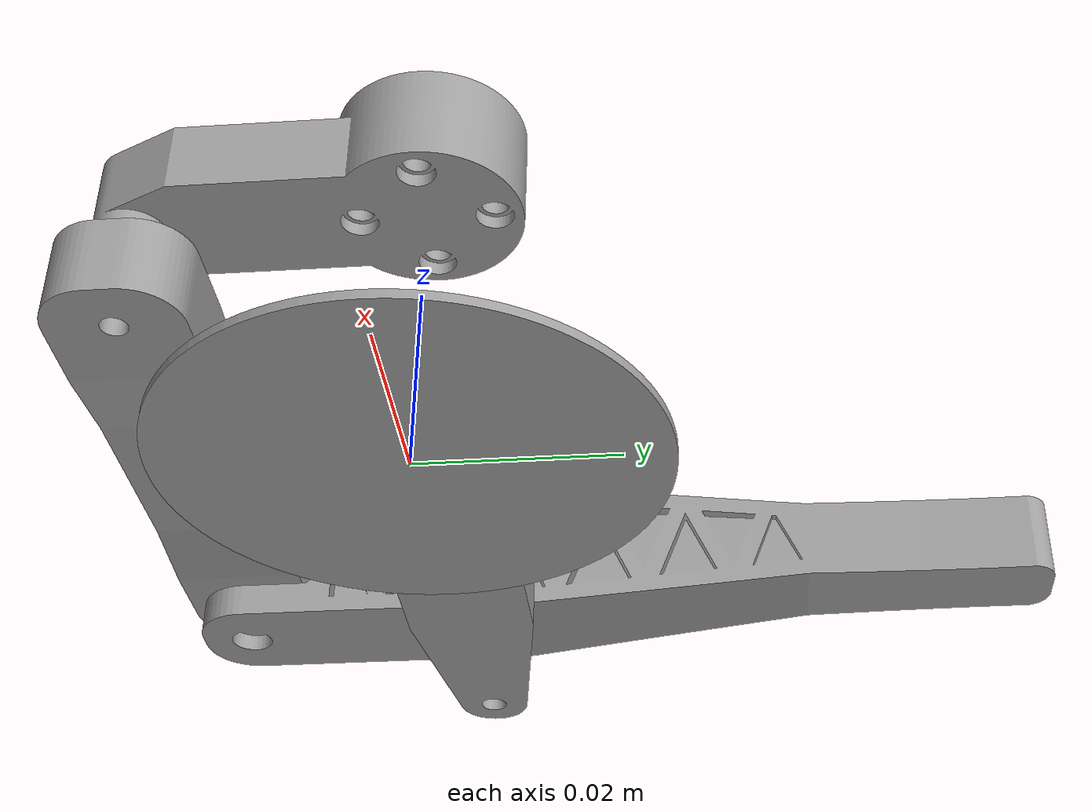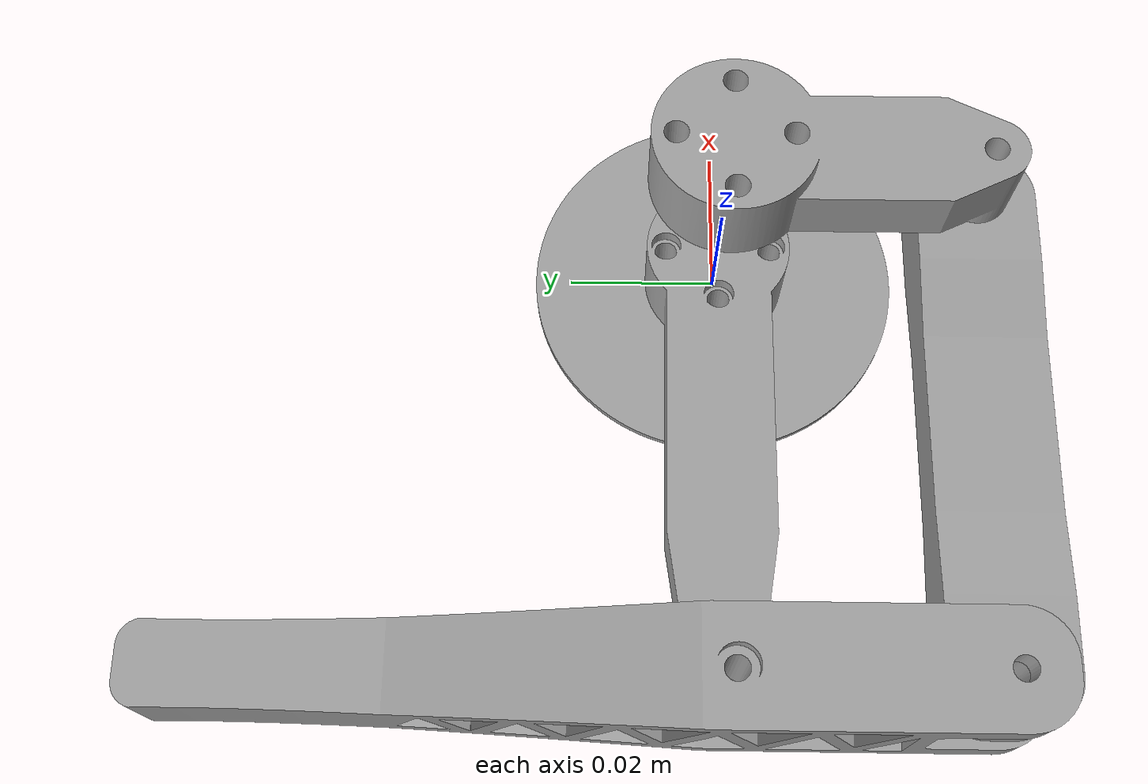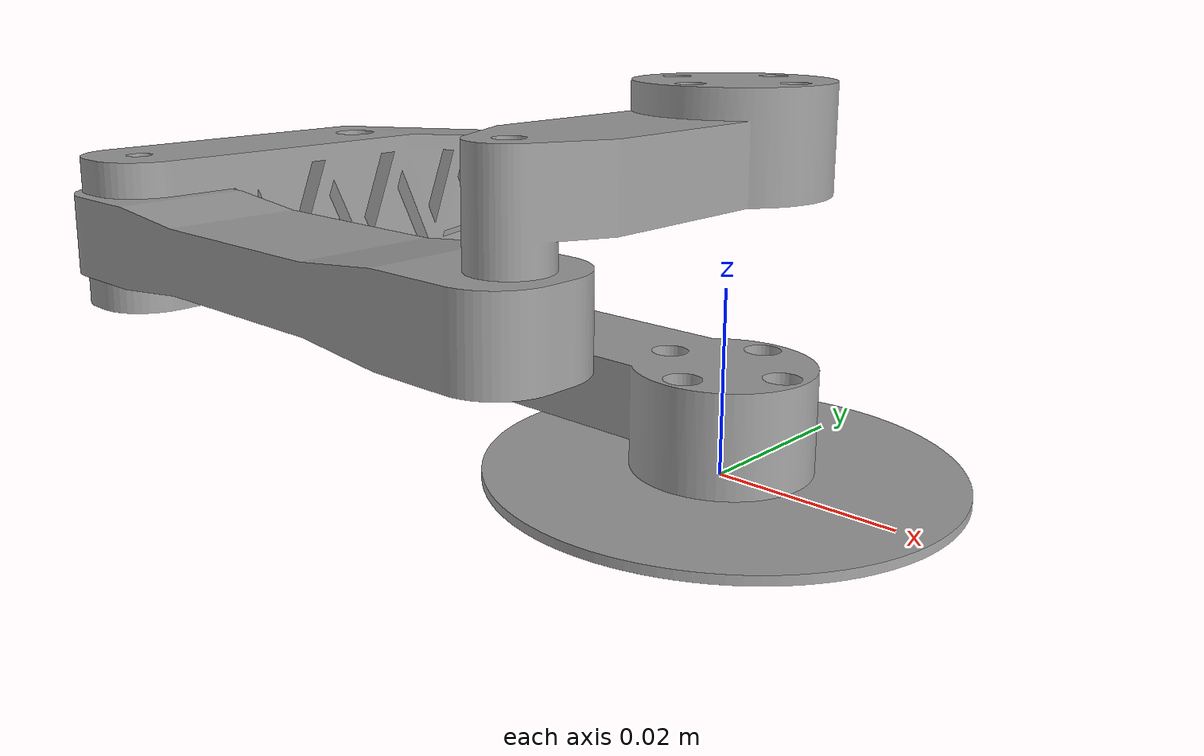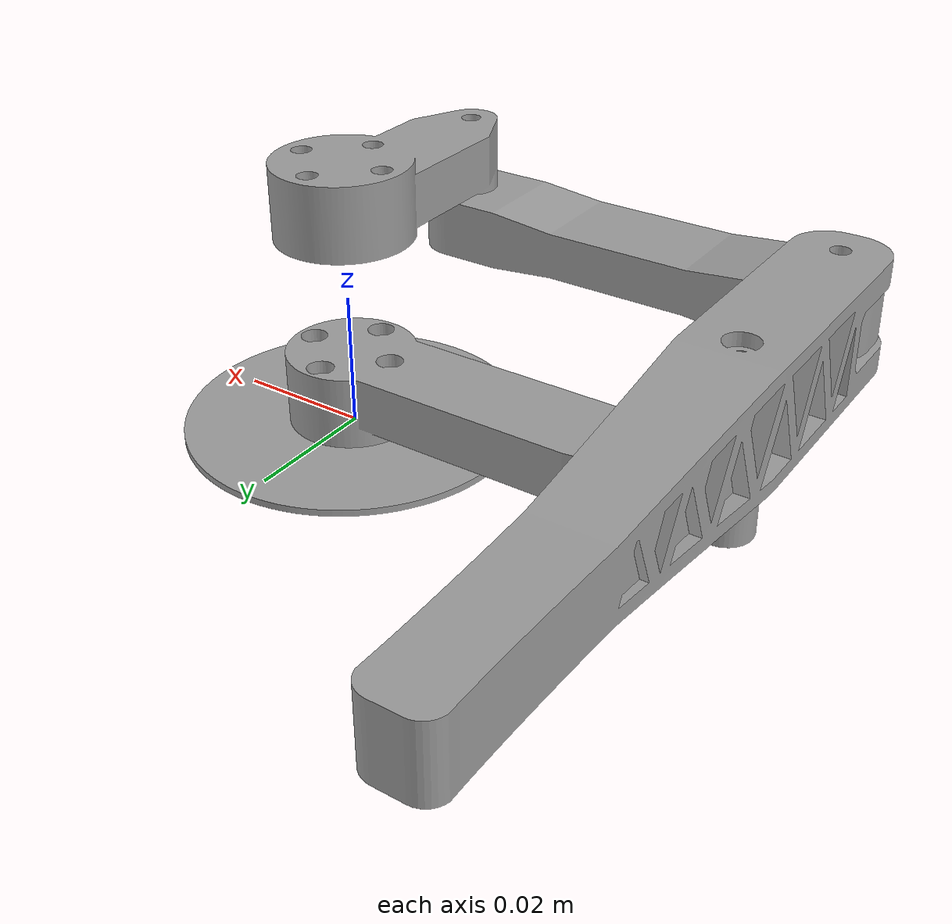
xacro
<?xml version="1.0" ?>
<robot name="leg_assembly_2" xmlns:xacro="http://www.ros.org/wiki/xacro">

<xacro:include filename="$(find four_bar_tests)/urdf/materials.xacro" />
<xacro:include filename="$(find four_bar_tests)/urdf/leg_assembly_2.trans" />
<link name="base_link">
  <inertial>
    <origin xyz="4.523455546970336e-18 -4.634477849432853e-18 0.0005000000000000002" rpy="0 0 0"/>
    <mass value="0.015413438956674918"/>
    <inertia ixx="2e-06" iyy="2e-06" izz="5e-06" ixy="-0.0" iyz="-0.0" ixz="0.0"/>
  </inertial>
  <visual>
    <origin xyz="0 0 0" rpy="0 0 0"/>
    <geometry>
      <mesh filename="package://four_bar_tests/meshes/base_link.stl" scale="0.001 0.001 0.001"/>
    </geometry>
    <material name="steel_satin"/>
  </visual>
  <collision>
    <origin xyz="0 0 0" rpy="0 0 0"/>
    <geometry>
      <mesh filename="package://four_bar_tests/meshes/base_link.stl" scale="0.001 0.001 0.001"/>
    </geometry>
  </collision>
</link>

<link name="Outer_Mid_Leg_v5_1">
  <inertial>
    <origin xyz="-0.02234829331760629 -3.06642734856997e-09 0.006518957773930485" rpy="0 0 0"/>
    <mass value="0.06544926542663207"/>
    <inertia ixx="2e-06" iyy="2.8e-05" izz="2.8e-05" ixy="0.0" iyz="-0.0" ixz="1e-06"/>
  </inertial>
  <visual>
    <origin xyz="-0.0 0.0 -0.001" rpy="0 0 0"/>
    <geometry>
      <mesh filename="package://four_bar_tests/meshes/Outer_Mid_Leg_v5_1.stl" scale="0.001 0.001 0.001"/>
    </geometry>
    <material name="steel_satin"/>
  </visual>
  <collision>
    <origin xyz="-0.0 0.0 -0.001" rpy="0 0 0"/>
    <geometry>
      <mesh filename="package://four_bar_tests/meshes/Outer_Mid_Leg_v5_1.stl" scale="0.001 0.001 0.001"/>
    </geometry>
  </collision>
</link>

<link name="Lower_Leg_v18_1">
  <inertial>
    <origin xyz="-1.0592182686508522e-10 0.011607214191396622 0.008502681783893731" rpy="0 0 0"/>
    <mass value="0.11490639183279938"/>
    <inertia ixx="9.1e-05" iyy="4e-06" izz="9e-05" ixy="-0.0" iyz="0.0" ixz="-0.0"/>
  </inertial>
  <visual>
    <origin xyz="0.06 -0.0 -0.014" rpy="0 0 0"/>
    <geometry>
      <mesh filename="package://four_bar_tests/meshes/Lower_Leg_v18_1.stl" scale="0.001 0.001 0.001"/>
    </geometry>
    <material name="steel_satin"/>
  </visual>
  <collision>
    <origin xyz="0.06 -0.0 -0.014" rpy="0 0 0"/>
    <geometry>
      <mesh filename="package://four_bar_tests/meshes/Lower_Leg_v18_1.stl" scale="0.001 0.001 0.001"/>
    </geometry>
  </collision>
</link>

<link name="Inner_Mid_Leg_v8_1">
  <inertial>
    <origin xyz="0.029909480487406923 -1.1378867292854977e-10 -0.004510560598069528" rpy="0 0 0"/>
    <mass value="0.06538664389210237"/>
    <inertia ixx="2e-06" iyy="2.9e-05" izz="3e-05" ixy="0.0" iyz="0.0" ixz="0.0"/>
  </inertial>
  <visual>
    <origin xyz="0.06 0.031 -0.027" rpy="0 0 0"/>
    <geometry>
      <mesh filename="package://four_bar_tests/meshes/Inner_Mid_Leg_v8_1.stl" scale="0.001 0.001 0.001"/>
    </geometry>
    <material name="steel_satin"/>
  </visual>
  <collision>
    <origin xyz="0.06 0.031 -0.027" rpy="0 0 0"/>
    <geometry>
      <mesh filename="package://four_bar_tests/meshes/Inner_Mid_Leg_v8_1.stl" scale="0.001 0.001 0.001"/>
    </geometry>
  </collision>
</link>

<link name="Outer_Upper_Leg_v4_1">
  <inertial>
    <origin xyz="-3.466291102067572e-08 0.021436478959040377 0.00771780764034689" rpy="0 0 0"/>
    <mass value="0.04496433217077165"/>
    <inertia ixx="7e-06" iyy="1e-06" izz="7e-06" ixy="-0.0" iyz="-0.0" ixz="0.0"/>
  </inertial>
  <visual>
    <origin xyz="-0.0 0.031 -0.027" rpy="0 0 0"/>
    <geometry>
      <mesh filename="package://four_bar_tests/meshes/Outer_Upper_Leg_v4_1.stl" scale="0.001 0.001 0.001"/>
    </geometry>
    <material name="steel_satin"/>
  </visual>
  <collision>
    <origin xyz="-0.0 0.031 -0.027" rpy="0 0 0"/>
    <geometry>
      <mesh filename="package://four_bar_tests/meshes/Outer_Upper_Leg_v4_1.stl" scale="0.001 0.001 0.001"/>
    </geometry>
  </collision>
</link>

<joint name="A" type="continuous">
  <origin xyz="0.0 0.0 0.001" rpy="0 0 0"/>
  <parent link="base_link"/>
  <child link="Outer_Mid_Leg_v5_1"/>
  <axis xyz="0.0 -0.0 1.0"/>
</joint>

<joint name="B" type="continuous">
  <origin xyz="-0.06 0.0 0.013" rpy="0 0 0"/>
  <parent link="Outer_Mid_Leg_v5_1"/>
  <child link="Lower_Leg_v18_1"/>
  <axis xyz="-0.0 0.0 -1.0"/>
</joint>

<joint name="C" type="continuous">
  <origin xyz="0.0 -0.031 0.013" rpy="0 0 0"/>
  <parent link="Lower_Leg_v18_1"/>
  <child link="Inner_Mid_Leg_v8_1"/>
  <axis xyz="-0.0 -0.0 1.0"/>
  <mimic joint="B" multiplier="1" offset ="0"/>
</joint>

<joint name="D" type="continuous">
  <origin xyz="0.06 0.0 0.0" rpy="0 0 0"/>
  <parent link="Inner_Mid_Leg_v8_1"/>
  <child link="Outer_Upper_Leg_v4_1"/>
  <axis xyz="0.0 0.0 -1.0"/>
  <mimic joint="B" multiplier="1" offset ="0"/>
</joint>

</robot>

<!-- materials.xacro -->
<robot name="leg_assembly_2" xmlns:xacro="http://www.ros.org/wiki/xacro" >

<material name="silver_default">
  <color rgba="0.700 0.700 0.700 1.000"/>
</material>
<material name="steel_satin">
  <color rgba="0.6274509803921569 0.6274509803921569 0.6274509803921569 1.0"/>
</material>

</robot>
